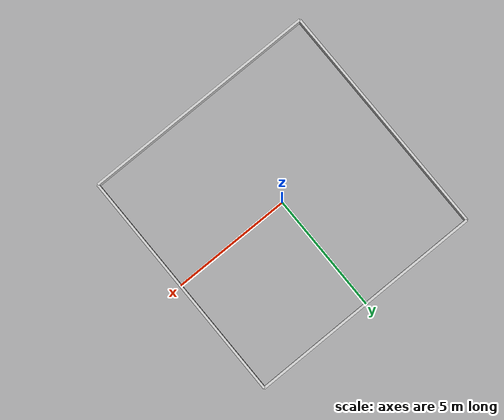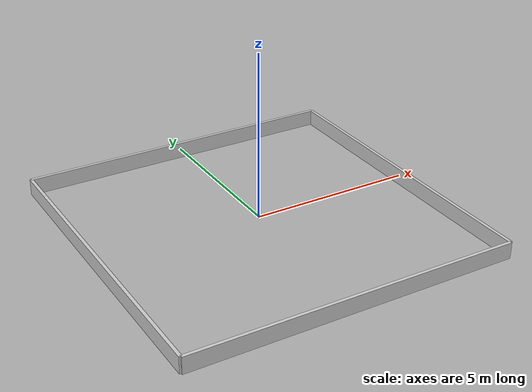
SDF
<?xml version="1.0" ?>
<sdf version="1.6">
  <model name="4walls">
    <static>true</static>

    <!-- North wall -->
    <link name="north_wall">
      <collision name="collision">
        <geometry>
          <box>
            <size>10 0.1 0.5</size> <!-- width x thickness x height -->
          </box>
        </geometry>
      </collision>
      <visual name="visual">
        <geometry>
          <box>
            <size>10 0.1 0.5</size>
          </box>
        </geometry>
        <material>
          <ambient>0.8 0.8 0.8 1</ambient>
        </material>
      </visual>
      <pose>0 5 0 0 0 0</pose>
    </link>

    <!-- South wall -->
    <link name="south_wall">
      <collision name="collision">
        <geometry>
          <box>
            <size>10 0.1 0.5</size>
          </box>
        </geometry>
      </collision>
      <visual name="visual">
        <geometry>
          <box>
            <size>10 0.1 0.5</size>
          </box>
        </geometry>
        <material>
          <ambient>0.8 0.8 0.8 1</ambient>
        </material>
      </visual>
      <pose>0 -5 0 0 0 0</pose>
    </link>

    <!-- East wall -->
    <link name="east_wall">
      <collision name="collision">
        <geometry>
          <box>
            <size>0.1 10 0.5</size>
          </box>
        </geometry>
      </collision>
      <visual name="visual">
        <geometry>
          <box>
            <size>0.1 10 0.5</size>
          </box>
        </geometry>
        <material>
          <ambient>0.8 0.8 0.8 1</ambient>
        </material>
      </visual>
      <pose>5 0 0 0 0 0</pose>
    </link>

    <!-- West wall -->
    <link name="west_wall">
      <collision name="collision">
        <geometry>
          <box>
            <size>0.1 10 0.5</size>
          </box>
        </geometry>
      </collision>
      <visual name="visual">
        <geometry>
          <box>
            <size>0.1 10 0.5</size>
          </box>
        </geometry>
        <material>
          <ambient>0.8 0.8 0.8 1</ambient>
        </material>
      </visual>
      <pose>-5 0 0 0 0 0</pose>
    </link>

  </model>
</sdf>
